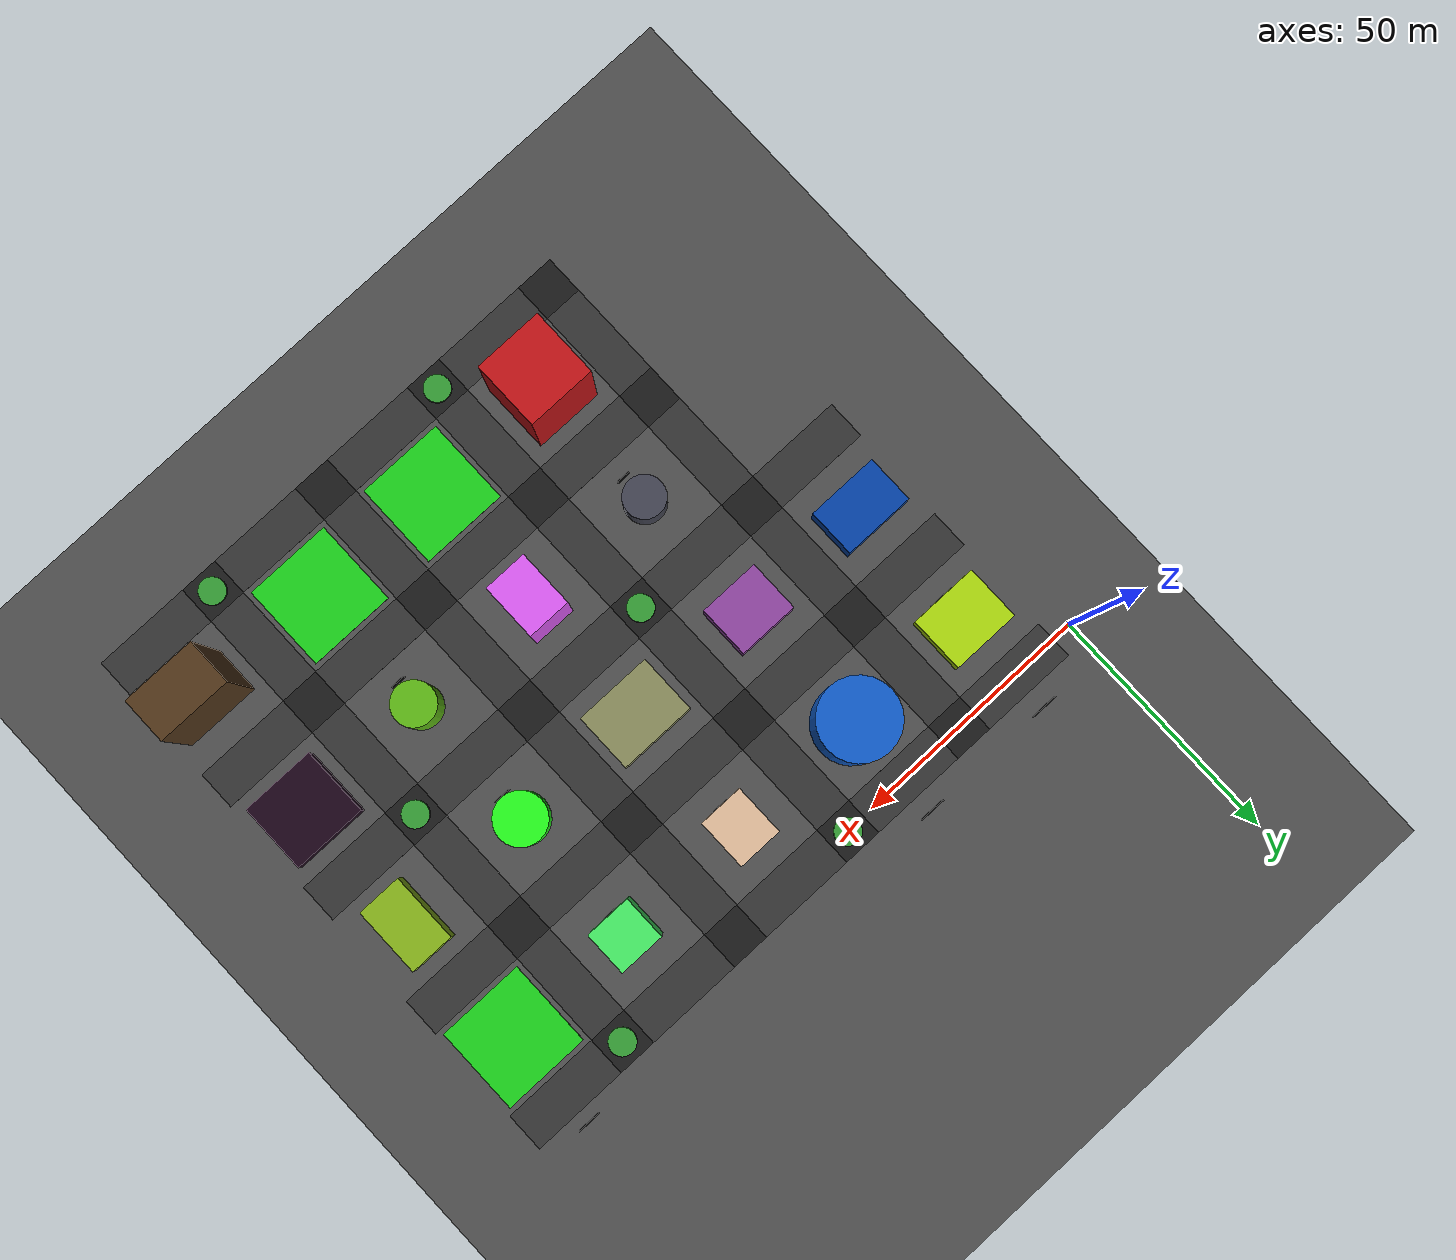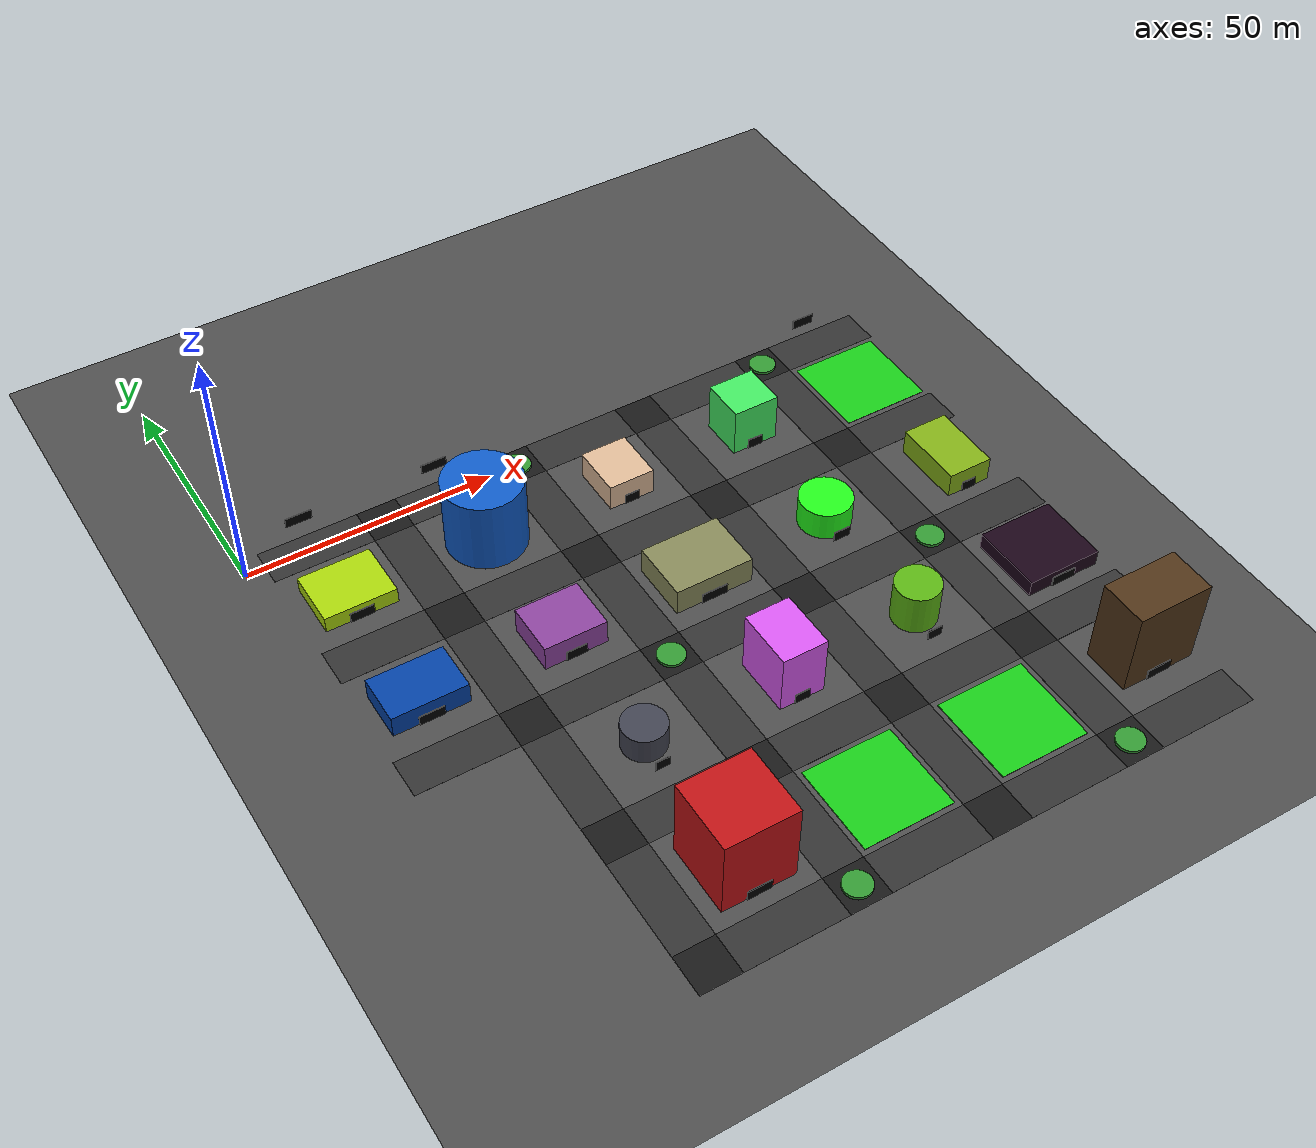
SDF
<sdf version="1.8">
 <world name="urban_city_rich">
  <model name="ground_plane">
   <static>true</static>
   <link name="link">
    <collision name="collision">
     <geometry><plane><normal>0 0 1</normal><size>200 200</size></plane></geometry>
     <surface><friction><ode><mu>100</mu><mu2>50</mu2></ode></friction></surface>
    </collision>
    <visual name="visual">
     <geometry><plane><normal>0 0 1</normal><size>200 200</size></plane></geometry>
     <material><ambient>0.3 0.3 0.3 1</ambient><diffuse>0.3 0.3 0.3 1</diffuse></material>
    </visual>
   </link>
  </model>
  <model name="road_h_0_-2">
   <static>true</static>
   <pose>14.0 -56.0 0.01 0 0 0</pose>
   <link name="link">
    <visual name="vis">
     <geometry><box><size>20.0 8.0 0.02</size></box></geometry>
     <material><ambient>0.2 0.2 0.2 1</ambient><diffuse>0.2 0.2 0.2 1</diffuse></material>
    </visual>
   </link>
  </model>
  <model name="bldg_26">
   <static>true</static>
   <pose>14.0 -42.0 2.227329479472929 0 0 0</pose>
   <link name="link">
    <collision name="col">
     <geometry><box><size>14.830618480299945 9.937693377669264 4.454658958945858</size></box></geometry>
    </collision>
    <visual name="vis">
     <geometry><box><size>14.830618480299945 9.937693377669264 4.454658958945858</size></box></geometry>
     <material>
      <ambient>0.014944022647955912 0.2557046216939589 0.6436075818787669 1</ambient>
      <diffuse>0.014944022647955912 0.2557046216939589 0.6436075818787669 1</diffuse>
     </material>
    </visual>
   </link>
  </model>
  <model name="door_26">
   <static>true</static>
   <pose>14.0 -47.06884668883463 1.0 0 0 0</pose>
   <link name="link">
    <visual name="vis">
     <geometry><box><size>4.943539493433315 0.2 2.0</size></box></geometry>
     <material><ambient>0 0 0 1</ambient><diffuse>0 0 0 1</diffuse></material>
    </visual>
   </link>
  </model>
  <model name="road_h_0_-1">
   <static>true</static>
   <pose>14.0 -28.0 0.01 0 0 0</pose>
   <link name="link">
    <visual name="vis">
     <geometry><box><size>20.0 8.0 0.02</size></box></geometry>
     <material><ambient>0.2 0.2 0.2 1</ambient><diffuse>0.2 0.2 0.2 1</diffuse></material>
    </visual>
   </link>
  </model>
  <model name="bldg_27">
   <static>true</static>
   <pose>14.0 -14.0 1.6210512188448476 0 0 0</pose>
   <link name="link">
    <collision name="col">
     <geometry><box><size>14.226174363999363 11.5067165014431 3.242102437689695</size></box></geometry>
    </collision>
    <visual name="vis">
     <geometry><box><size>14.226174363999363 11.5067165014431 3.242102437689695</size></box></geometry>
     <material>
      <ambient>0.6643178804394669 0.8339242576962013 0.04621864797523745 1</ambient>
      <diffuse>0.6643178804394669 0.8339242576962013 0.04621864797523745 1</diffuse>
     </material>
    </visual>
   </link>
  </model>
  <model name="door_27">
   <static>true</static>
   <pose>14.0 -19.853358250721552 1.0 0 0 0</pose>
   <link name="link">
    <visual name="vis">
     <geometry><box><size>4.7420581213331205 0.2 2.0</size></box></geometry>
     <material><ambient>0 0 0 1</ambient><diffuse>0 0 0 1</diffuse></material>
    </visual>
   </link>
  </model>
  <model name="road_h_0_0">
   <static>true</static>
   <pose>14.0 0.0 0.01 0 0 0</pose>
   <link name="link">
    <visual name="vis">
     <geometry><box><size>20.0 8.0 0.02</size></box></geometry>
     <material><ambient>0.2 0.2 0.2 1</ambient><diffuse>0.2 0.2 0.2 1</diffuse></material>
    </visual>
   </link>
  </model>
  <model name="door_28">
   <static>true</static>
   <pose>14.0 7.712627595097462 1.0 0 0 0</pose>
   <link name="link">
    <visual name="vis">
     <geometry><box><size>5.265578437252922 0.2 2.0</size></box></geometry>
     <material><ambient>0 0 0 1</ambient><diffuse>0 0 0 1</diffuse></material>
    </visual>
   </link>
  </model>
  <model name="road_inter_1_-4">
   <static>true</static>
   <pose>28.0 -112.0 0.01 0 0 0</pose>
   <link name="link">
    <visual name="vis">
     <geometry><box><size>8.0 8.0 0.02</size></box></geometry>
     <material><ambient>0.1 0.1 0.1 1</ambient><diffuse>0.1 0.1 0.1 1</diffuse></material>
    </visual>
   </link>
  </model>
  <model name="road_h_1_-4">
   <static>true</static>
   <pose>42.0 -112.0 0.01 0 0 0</pose>
   <link name="link">
    <visual name="vis">
     <geometry><box><size>20.0 8.0 0.02</size></box></geometry>
     <material><ambient>0.2 0.2 0.2 1</ambient><diffuse>0.2 0.2 0.2 1</diffuse></material>
    </visual>
   </link>
  </model>
  <model name="road_v_1_-4">
   <static>true</static>
   <pose>28.0 -98.0 0.01 0 0 0</pose>
   <link name="link">
    <visual name="vis">
     <geometry><box><size>8.0 20.0 0.02</size></box></geometry>
     <material><ambient>0.2 0.2 0.2 1</ambient><diffuse>0.2 0.2 0.2 1</diffuse></material>
    </visual>
   </link>
  </model>
  <model name="bldg_31">
   <static>true</static>
   <pose>42.0 -98.0 8.404288380516794 0 0 0</pose>
   <link name="link">
    <collision name="col">
     <geometry><box><size>14.20869889164246 14.167049217585973 16.80857676103359</size></box></geometry>
    </collision>
    <visual name="vis">
     <geometry><box><size>14.20869889164246 14.167049217585973 16.80857676103359</size></box></geometry>
     <material>
      <ambient>0.750558616804145 0.07492896890688527 0.0869654473486281 1</ambient>
      <diffuse>0.750558616804145 0.07492896890688527 0.0869654473486281 1</diffuse>
     </material>
    </visual>
   </link>
  </model>
  <model name="door_31">
   <static>true</static>
   <pose>42.0 -105.18352460879298 1.0 0 0 0</pose>
   <link name="link">
    <visual name="vis">
     <geometry><box><size>4.73623296388082 0.2 2.0</size></box></geometry>
     <material><ambient>0 0 0 1</ambient><diffuse>0 0 0 1</diffuse></material>
    </visual>
   </link>
  </model>
  <model name="road_inter_1_-3">
   <static>true</static>
   <pose>28.0 -84.0 0.01 0 0 0</pose>
   <link name="link">
    <visual name="vis">
     <geometry><box><size>8.0 8.0 0.02</size></box></geometry>
     <material><ambient>0.1 0.1 0.1 1</ambient><diffuse>0.1 0.1 0.1 1</diffuse></material>
    </visual>
   </link>
  </model>
  <model name="road_h_1_-3">
   <static>true</static>
   <pose>42.0 -84.0 0.01 0 0 0</pose>
   <link name="link">
    <visual name="vis">
     <geometry><box><size>20.0 8.0 0.02</size></box></geometry>
     <material><ambient>0.2 0.2 0.2 1</ambient><diffuse>0.2 0.2 0.2 1</diffuse></material>
    </visual>
   </link>
  </model>
  <model name="road_v_1_-3">
   <static>true</static>
   <pose>28.0 -70.0 0.01 0 0 0</pose>
   <link name="link">
    <visual name="vis">
     <geometry><box><size>8.0 20.0 0.02</size></box></geometry>
     <material><ambient>0.2 0.2 0.2 1</ambient><diffuse>0.2 0.2 0.2 1</diffuse></material>
    </visual>
   </link>
  </model>
  <model name="bldg_32">
   <static>true</static>
   <pose>42.0 -70.0 2.687505807491285 0 0 0</pose>
   <link name="link">
    <collision name="col">
     <geometry><cylinder><radius>4.201098558065695</radius><length>5.37501161498257</length></cylinder></geometry>
    </collision>
    <visual name="vis">
     <geometry><cylinder><radius>4.201098558065695</radius><length>5.37501161498257</length></cylinder></geometry>
     <material>
      <ambient>0.2552862374195416 0.2608873954348342 0.31461987145620296 1</ambient>
      <diffuse>0.2552862374195416 0.2608873954348342 0.31461987145620296 1</diffuse>
     </material>
    </visual>
   </link>
  </model>
  <model name="door_32">
   <static>true</static>
   <pose>42.0 -76.00262236780411 1.0 0 0 0</pose>
   <link name="link">
    <visual name="vis">
     <geometry><box><size>2.8007323720437967 0.2 2.0</size></box></geometry>
     <material><ambient>0 0 0 1</ambient><diffuse>0 0 0 1</diffuse></material>
    </visual>
   </link>
  </model>
  <model name="road_inter_1_-2">
   <static>true</static>
   <pose>28.0 -56.0 0.01 0 0 0</pose>
   <link name="link">
    <visual name="vis">
     <geometry><box><size>8.0 8.0 0.02</size></box></geometry>
     <material><ambient>0.1 0.1 0.1 1</ambient><diffuse>0.1 0.1 0.1 1</diffuse></material>
    </visual>
   </link>
  </model>
  <model name="road_h_1_-2">
   <static>true</static>
   <pose>42.0 -56.0 0.01 0 0 0</pose>
   <link name="link">
    <visual name="vis">
     <geometry><box><size>20.0 8.0 0.02</size></box></geometry>
     <material><ambient>0.2 0.2 0.2 1</ambient><diffuse>0.2 0.2 0.2 1</diffuse></material>
    </visual>
   </link>
  </model>
  <model name="road_v_1_-2">
   <static>true</static>
   <pose>28.0 -42.0 0.01 0 0 0</pose>
   <link name="link">
    <visual name="vis">
     <geometry><box><size>8.0 20.0 0.02</size></box></geometry>
     <material><ambient>0.2 0.2 0.2 1</ambient><diffuse>0.2 0.2 0.2 1</diffuse></material>
    </visual>
   </link>
  </model>
  <model name="bldg_33">
   <static>true</static>
   <pose>42.0 -42.0 2.5856748670217677 0 0 0</pose>
   <link name="link">
    <collision name="col">
     <geometry><box><size>12.516602339531532 10.679230928623316 5.1713497340435355</size></box></geometry>
    </collision>
    <visual name="vis">
     <geometry><box><size>12.516602339531532 10.679230928623316 5.1713497340435355</size></box></geometry>
     <material>
      <ambient>0.5465976833056978 0.2647346233425515 0.6176293978911161 1</ambient>
      <diffuse>0.5465976833056978 0.2647346233425515 0.6176293978911161 1</diffuse>
     </material>
    </visual>
   </link>
  </model>
  <model name="door_33">
   <static>true</static>
   <pose>42.0 -47.43961546431166 1.0 0 0 0</pose>
   <link name="link">
    <visual name="vis">
     <geometry><box><size>4.172200779843844 0.2 2.0</size></box></geometry>
     <material><ambient>0 0 0 1</ambient><diffuse>0 0 0 1</diffuse></material>
    </visual>
   </link>
  </model>
  <model name="road_inter_1_-1">
   <static>true</static>
   <pose>28.0 -28.0 0.01 0 0 0</pose>
   <link name="link">
    <visual name="vis">
     <geometry><box><size>8.0 8.0 0.02</size></box></geometry>
     <material><ambient>0.1 0.1 0.1 1</ambient><diffuse>0.1 0.1 0.1 1</diffuse></material>
    </visual>
   </link>
  </model>
  <model name="road_h_1_-1">
   <static>true</static>
   <pose>42.0 -28.0 0.01 0 0 0</pose>
   <link name="link">
    <visual name="vis">
     <geometry><box><size>20.0 8.0 0.02</size></box></geometry>
     <material><ambient>0.2 0.2 0.2 1</ambient><diffuse>0.2 0.2 0.2 1</diffuse></material>
    </visual>
   </link>
  </model>
  <model name="road_v_1_-1">
   <static>true</static>
   <pose>28.0 -14.0 0.01 0 0 0</pose>
   <link name="link">
    <visual name="vis">
     <geometry><box><size>8.0 20.0 0.02</size></box></geometry>
     <material><ambient>0.2 0.2 0.2 1</ambient><diffuse>0.2 0.2 0.2 1</diffuse></material>
    </visual>
   </link>
  </model>
  <model name="bldg_34">
   <static>true</static>
   <pose>42.0 -14.0 7.50124099914776 0 0 0</pose>
   <link name="link">
    <collision name="col">
     <geometry><cylinder><radius>7.812921677906109</radius><length>15.00248199829552</length></cylinder></geometry>
    </collision>
    <visual name="vis">
     <geometry><cylinder><radius>7.812921677906109</radius><length>15.00248199829552</length></cylinder></geometry>
     <material>
      <ambient>0.061045437425707116 0.3574875815688916 0.7789574554997412 1</ambient>
      <diffuse>0.061045437425707116 0.3574875815688916 0.7789574554997412 1</diffuse>
     </material>
    </visual>
   </link>
  </model>
  <model name="door_34">
   <static>true</static>
   <pose>42.0 -18.463495962005645 1.0 0 0 0</pose>
   <link name="link">
    <visual name="vis">
     <geometry><box><size>5.2086144519374065 0.2 2.0</size></box></geometry>
     <material><ambient>0 0 0 1</ambient><diffuse>0 0 0 1</diffuse></material>
    </visual>
   </link>
  </model>
  <model name="road_inter_1_0">
   <static>true</static>
   <pose>28.0 0.0 0.01 0 0 0</pose>
   <link name="link">
    <visual name="vis">
     <geometry><box><size>8.0 8.0 0.02</size></box></geometry>
     <material><ambient>0.1 0.1 0.1 1</ambient><diffuse>0.1 0.1 0.1 1</diffuse></material>
    </visual>
   </link>
  </model>
  <model name="road_h_1_0">
   <static>true</static>
   <pose>42.0 0.0 0.01 0 0 0</pose>
   <link name="link">
    <visual name="vis">
     <geometry><box><size>20.0 8.0 0.02</size></box></geometry>
     <material><ambient>0.2 0.2 0.2 1</ambient><diffuse>0.2 0.2 0.2 1</diffuse></material>
    </visual>
   </link>
  </model>
  <model name="door_35">
   <static>true</static>
   <pose>42.0 7.543833987541167 1.0 0 0 0</pose>
   <link name="link">
    <visual name="vis">
     <geometry><box><size>5.183334092854847 0.2 2.0</size></box></geometry>
     <material><ambient>0 0 0 1</ambient><diffuse>0 0 0 1</diffuse></material>
    </visual>
   </link>
  </model>
  <model name="road_inter_2_-4">
   <static>true</static>
   <pose>56.0 -112.0 0.01 0 0 0</pose>
   <link name="link">
    <visual name="vis">
     <geometry><box><size>8.0 8.0 0.02</size></box></geometry>
     <material><ambient>0.1 0.1 0.1 1</ambient><diffuse>0.1 0.1 0.1 1</diffuse></material>
    </visual>
   </link>
  </model>
  <model name="roundabout_2_-4">
   <static>true</static>
   <pose>56.0 -112.0 0.3 0 0 0</pose>
   <link name="link">
    <collision name="col">
     <geometry><cylinder><radius>2.6666666666666665</radius><length>0.6</length></cylinder></geometry>
    </collision>
    <visual name="vis">
     <geometry><cylinder><radius>2.6666666666666665</radius><length>0.6</length></cylinder></geometry>
     <material><ambient>0.2 0.6 0.2 1</ambient><diffuse>0.2 0.6 0.2 1</diffuse></material>
    </visual>
   </link>
  </model>
  <model name="road_h_2_-4">
   <static>true</static>
   <pose>70.0 -112.0 0.01 0 0 0</pose>
   <link name="link">
    <visual name="vis">
     <geometry><box><size>20.0 8.0 0.02</size></box></geometry>
     <material><ambient>0.2 0.2 0.2 1</ambient><diffuse>0.2 0.2 0.2 1</diffuse></material>
    </visual>
   </link>
  </model>
  <model name="road_v_2_-4">
   <static>true</static>
   <pose>56.0 -98.0 0.01 0 0 0</pose>
   <link name="link">
    <visual name="vis">
     <geometry><box><size>8.0 20.0 0.02</size></box></geometry>
     <material><ambient>0.2 0.2 0.2 1</ambient><diffuse>0.2 0.2 0.2 1</diffuse></material>
    </visual>
   </link>
  </model>
  <model name="park_2_-4">
   <static>true</static>
   <pose>70.0 -98.0 0.05 0 0 0</pose>
   <link name="link">
    <visual name="vis">
     <geometry><box><size>18.0 18.0 0.1</size></box></geometry>
     <material><ambient>0.1 0.8 0.1 1</ambient><diffuse>0.1 0.8 0.1 1</diffuse></material>
    </visual>
   </link>
  </model>
  <model name="road_inter_2_-3">
   <static>true</static>
   <pose>56.0 -84.0 0.01 0 0 0</pose>
   <link name="link">
    <visual name="vis">
     <geometry><box><size>8.0 8.0 0.02</size></box></geometry>
     <material><ambient>0.1 0.1 0.1 1</ambient><diffuse>0.1 0.1 0.1 1</diffuse></material>
    </visual>
   </link>
  </model>
  <model name="road_h_2_-3">
   <static>true</static>
   <pose>70.0 -84.0 0.01 0 0 0</pose>
   <link name="link">
    <visual name="vis">
     <geometry><box><size>20.0 8.0 0.02</size></box></geometry>
     <material><ambient>0.2 0.2 0.2 1</ambient><diffuse>0.2 0.2 0.2 1</diffuse></material>
    </visual>
   </link>
  </model>
  <model name="road_v_2_-3">
   <static>true</static>
   <pose>56.0 -70.0 0.01 0 0 0</pose>
   <link name="link">
    <visual name="vis">
     <geometry><box><size>8.0 20.0 0.02</size></box></geometry>
     <material><ambient>0.2 0.2 0.2 1</ambient><diffuse>0.2 0.2 0.2 1</diffuse></material>
    </visual>
   </link>
  </model>
  <model name="bldg_38">
   <static>true</static>
   <pose>70.0 -70.0 6.154425954870812 0 0 0</pose>
   <link name="link">
    <collision name="col">
     <geometry><box><size>9.009073683840544 11.739423851144277 12.308851909741623</size></box></geometry>
    </collision>
    <visual name="vis">
     <geometry><box><size>9.009073683840544 11.739423851144277 12.308851909741623</size></box></geometry>
     <material>
      <ambient>0.8473915560554008 0.34940695370986863 0.9401597498386961 1</ambient>
      <diffuse>0.8473915560554008 0.34940695370986863 0.9401597498386961 1</diffuse>
     </material>
    </visual>
   </link>
  </model>
  <model name="door_38">
   <static>true</static>
   <pose>70.0 -75.96971192557213 1.0 0 0 0</pose>
   <link name="link">
    <visual name="vis">
     <geometry><box><size>3.0030245612801814 0.2 2.0</size></box></geometry>
     <material><ambient>0 0 0 1</ambient><diffuse>0 0 0 1</diffuse></material>
    </visual>
   </link>
  </model>
  <model name="road_inter_2_-2">
   <static>true</static>
   <pose>56.0 -56.0 0.01 0 0 0</pose>
   <link name="link">
    <visual name="vis">
     <geometry><box><size>8.0 8.0 0.02</size></box></geometry>
     <material><ambient>0.1 0.1 0.1 1</ambient><diffuse>0.1 0.1 0.1 1</diffuse></material>
    </visual>
   </link>
  </model>
  <model name="roundabout_2_-2">
   <static>true</static>
   <pose>56.0 -56.0 0.3 0 0 0</pose>
   <link name="link">
    <collision name="col">
     <geometry><cylinder><radius>2.6666666666666665</radius><length>0.6</length></cylinder></geometry>
    </collision>
    <visual name="vis">
     <geometry><cylinder><radius>2.6666666666666665</radius><length>0.6</length></cylinder></geometry>
     <material><ambient>0.2 0.6 0.2 1</ambient><diffuse>0.2 0.6 0.2 1</diffuse></material>
    </visual>
   </link>
  </model>
  <model name="road_h_2_-2">
   <static>true</static>
   <pose>70.0 -56.0 0.01 0 0 0</pose>
   <link name="link">
    <visual name="vis">
     <geometry><box><size>20.0 8.0 0.02</size></box></geometry>
     <material><ambient>0.2 0.2 0.2 1</ambient><diffuse>0.2 0.2 0.2 1</diffuse></material>
    </visual>
   </link>
  </model>
  <model name="road_v_2_-2">
   <static>true</static>
   <pose>56.0 -42.0 0.01 0 0 0</pose>
   <link name="link">
    <visual name="vis">
     <geometry><box><size>8.0 20.0 0.02</size></box></geometry>
     <material><ambient>0.2 0.2 0.2 1</ambient><diffuse>0.2 0.2 0.2 1</diffuse></material>
    </visual>
   </link>
  </model>
  <model name="bldg_39">
   <static>true</static>
   <pose>70.0 -42.0 2.7153059546897342 0 0 0</pose>
   <link name="link">
    <collision name="col">
     <geometry><box><size>15.87618688394543 12.123913248613473 5.4306119093794685</size></box></geometry>
    </collision>
    <visual name="vis">
     <geometry><box><size>15.87618688394543 12.123913248613473 5.4306119093794685</size></box></geometry>
     <material>
      <ambient>0.5268780875361152 0.5370015854207405 0.3526800237430878 1</ambient>
      <diffuse>0.5268780875361152 0.5370015854207405 0.3526800237430878 1</diffuse>
     </material>
    </visual>
   </link>
  </model>
  <model name="door_39">
   <static>true</static>
   <pose>70.0 -48.16195662430674 1.0 0 0 0</pose>
   <link name="link">
    <visual name="vis">
     <geometry><box><size>5.292062294648477 0.2 2.0</size></box></geometry>
     <material><ambient>0 0 0 1</ambient><diffuse>0 0 0 1</diffuse></material>
    </visual>
   </link>
  </model>
  <model name="road_inter_2_-1">
   <static>true</static>
   <pose>56.0 -28.0 0.01 0 0 0</pose>
   <link name="link">
    <visual name="vis">
     <geometry><box><size>8.0 8.0 0.02</size></box></geometry>
     <material><ambient>0.1 0.1 0.1 1</ambient><diffuse>0.1 0.1 0.1 1</diffuse></material>
    </visual>
   </link>
  </model>
  <model name="road_h_2_-1">
   <static>true</static>
   <pose>70.0 -28.0 0.01 0 0 0</pose>
   <link name="link">
    <visual name="vis">
     <geometry><box><size>20.0 8.0 0.02</size></box></geometry>
     <material><ambient>0.2 0.2 0.2 1</ambient><diffuse>0.2 0.2 0.2 1</diffuse></material>
    </visual>
   </link>
  </model>
  <model name="road_v_2_-1">
   <static>true</static>
   <pose>56.0 -14.0 0.01 0 0 0</pose>
   <link name="link">
    <visual name="vis">
     <geometry><box><size>8.0 20.0 0.02</size></box></geometry>
     <material><ambient>0.2 0.2 0.2 1</ambient><diffuse>0.2 0.2 0.2 1</diffuse></material>
    </visual>
   </link>
  </model>
  <model name="bldg_40">
   <static>true</static>
   <pose>70.0 -14.0 2.693910421263247 0 0 0</pose>
   <link name="link">
    <collision name="col">
     <geometry><box><size>9.326530692349271 10.558313755330133 5.387820842526494</size></box></geometry>
    </collision>
    <visual name="vis">
     <geometry><box><size>9.326530692349271 10.558313755330133 5.387820842526494</size></box></geometry>
     <material>
      <ambient>0.8631135147435034 0.7215568437654141 0.5901288297784577 1</ambient>
      <diffuse>0.8631135147435034 0.7215568437654141 0.5901288297784577 1</diffuse>
     </material>
    </visual>
   </link>
  </model>
  <model name="door_40">
   <static>true</static>
   <pose>70.0 -19.379156877665068 1.0 0 0 0</pose>
   <link name="link">
    <visual name="vis">
     <geometry><box><size>3.1088435641164236 0.2 2.0</size></box></geometry>
     <material><ambient>0 0 0 1</ambient><diffuse>0 0 0 1</diffuse></material>
    </visual>
   </link>
  </model>
  <model name="road_inter_2_0">
   <static>true</static>
   <pose>56.0 0.0 0.01 0 0 0</pose>
   <link name="link">
    <visual name="vis">
     <geometry><box><size>8.0 8.0 0.02</size></box></geometry>
     <material><ambient>0.1 0.1 0.1 1</ambient><diffuse>0.1 0.1 0.1 1</diffuse></material>
    </visual>
   </link>
  </model>
  <model name="roundabout_2_0">
   <static>true</static>
   <pose>56.0 0.0 0.3 0 0 0</pose>
   <link name="link">
    <collision name="col">
     <geometry><cylinder><radius>2.6666666666666665</radius><length>0.6</length></cylinder></geometry>
    </collision>
    <visual name="vis">
     <geometry><cylinder><radius>2.6666666666666665</radius><length>0.6</length></cylinder></geometry>
     <material><ambient>0.2 0.6 0.2 1</ambient><diffuse>0.2 0.6 0.2 1</diffuse></material>
    </visual>
   </link>
  </model>
  <model name="road_h_2_0">
   <static>true</static>
   <pose>70.0 0.0 0.01 0 0 0</pose>
   <link name="link">
    <visual name="vis">
     <geometry><box><size>20.0 8.0 0.02</size></box></geometry>
     <material><ambient>0.2 0.2 0.2 1</ambient><diffuse>0.2 0.2 0.2 1</diffuse></material>
    </visual>
   </link>
  </model>
  <model name="road_inter_3_-4">
   <static>true</static>
   <pose>84.0 -112.0 0.01 0 0 0</pose>
   <link name="link">
    <visual name="vis">
     <geometry><box><size>8.0 8.0 0.02</size></box></geometry>
     <material><ambient>0.1 0.1 0.1 1</ambient><diffuse>0.1 0.1 0.1 1</diffuse></material>
    </visual>
   </link>
  </model>
  <model name="road_h_3_-4">
   <static>true</static>
   <pose>98.0 -112.0 0.01 0 0 0</pose>
   <link name="link">
    <visual name="vis">
     <geometry><box><size>20.0 8.0 0.02</size></box></geometry>
     <material><ambient>0.2 0.2 0.2 1</ambient><diffuse>0.2 0.2 0.2 1</diffuse></material>
    </visual>
   </link>
  </model>
  <model name="road_v_3_-4">
   <static>true</static>
   <pose>84.0 -98.0 0.01 0 0 0</pose>
   <link name="link">
    <visual name="vis">
     <geometry><box><size>8.0 20.0 0.02</size></box></geometry>
     <material><ambient>0.2 0.2 0.2 1</ambient><diffuse>0.2 0.2 0.2 1</diffuse></material>
    </visual>
   </link>
  </model>
  <model name="park_3_-4">
   <static>true</static>
   <pose>98.0 -98.0 0.05 0 0 0</pose>
   <link name="link">
    <visual name="vis">
     <geometry><box><size>18.0 18.0 0.1</size></box></geometry>
     <material><ambient>0.1 0.8 0.1 1</ambient><diffuse>0.1 0.8 0.1 1</diffuse></material>
    </visual>
   </link>
  </model>
  <model name="road_inter_3_-3">
   <static>true</static>
   <pose>84.0 -84.0 0.01 0 0 0</pose>
   <link name="link">
    <visual name="vis">
     <geometry><box><size>8.0 8.0 0.02</size></box></geometry>
     <material><ambient>0.1 0.1 0.1 1</ambient><diffuse>0.1 0.1 0.1 1</diffuse></material>
    </visual>
   </link>
  </model>
  <model name="road_h_3_-3">
   <static>true</static>
   <pose>98.0 -84.0 0.01 0 0 0</pose>
   <link name="link">
    <visual name="vis">
     <geometry><box><size>20.0 8.0 0.02</size></box></geometry>
     <material><ambient>0.2 0.2 0.2 1</ambient><diffuse>0.2 0.2 0.2 1</diffuse></material>
    </visual>
   </link>
  </model>
  <model name="road_v_3_-3">
   <static>true</static>
   <pose>84.0 -70.0 0.01 0 0 0</pose>
   <link name="link">
    <visual name="vis">
     <geometry><box><size>8.0 20.0 0.02</size></box></geometry>
     <material><ambient>0.2 0.2 0.2 1</ambient><diffuse>0.2 0.2 0.2 1</diffuse></material>
    </visual>
   </link>
  </model>
  <model name="bldg_46">
   <static>true</static>
   <pose>98.0 -70.0 4.153096538224782 0 0 0</pose>
   <link name="link">
    <collision name="col">
     <geometry>
      <cylinder><radius>4.3735702617982515</radius><length>8.306193076449564</length></cylinder>
     </geometry>
    </collision>
    <visual name="vis">
     <geometry>
      <cylinder><radius>4.3735702617982515</radius><length>8.306193076449564</length></cylinder>
     </geometry>
     <material>
      <ambient>0.3590225104113234 0.7038481829484335 0.07840755687511325 1</ambient>
      <diffuse>0.3590225104113234 0.7038481829484335 0.07840755687511325 1</diffuse>
     </material>
    </visual>
   </link>
  </model>
  <model name="door_46">
   <static>true</static>
   <pose>98.0 -76.05665197296246 1.0 0 0 0</pose>
   <link name="link">
    <visual name="vis">
     <geometry><box><size>2.915713507865501 0.2 2.0</size></box></geometry>
     <material><ambient>0 0 0 1</ambient><diffuse>0 0 0 1</diffuse></material>
    </visual>
   </link>
  </model>
  <model name="road_inter_3_-2">
   <static>true</static>
   <pose>84.0 -56.0 0.01 0 0 0</pose>
   <link name="link">
    <visual name="vis">
     <geometry><box><size>8.0 8.0 0.02</size></box></geometry>
     <material><ambient>0.1 0.1 0.1 1</ambient><diffuse>0.1 0.1 0.1 1</diffuse></material>
    </visual>
   </link>
  </model>
  <model name="road_h_3_-2">
   <static>true</static>
   <pose>98.0 -56.0 0.01 0 0 0</pose>
   <link name="link">
    <visual name="vis">
     <geometry><box><size>20.0 8.0 0.02</size></box></geometry>
     <material><ambient>0.2 0.2 0.2 1</ambient><diffuse>0.2 0.2 0.2 1</diffuse></material>
    </visual>
   </link>
  </model>
  <model name="road_v_3_-2">
   <static>true</static>
   <pose>84.0 -42.0 0.01 0 0 0</pose>
   <link name="link">
    <visual name="vis">
     <geometry><box><size>8.0 20.0 0.02</size></box></geometry>
     <material><ambient>0.2 0.2 0.2 1</ambient><diffuse>0.2 0.2 0.2 1</diffuse></material>
    </visual>
   </link>
  </model>
  <model name="bldg_47">
   <static>true</static>
   <pose>98.0 -42.0 2.904697196497991 0 0 0</pose>
   <link name="link">
    <collision name="col">
     <geometry><cylinder><radius>5.180633058644766</radius><length>5.809394392995982</length></cylinder></geometry>
    </collision>
    <visual name="vis">
     <geometry><cylinder><radius>5.180633058644766</radius><length>5.809394392995982</length></cylinder></geometry>
     <material>
      <ambient>0.13964670183557149 0.9764104807582136 0.10597364464249848 1</ambient>
      <diffuse>0.13964670183557149 0.9764104807582136 0.10597364464249848 1</diffuse>
     </material>
    </visual>
   </link>
  </model>
  <model name="door_47">
   <static>true</static>
   <pose>98.0 -47.6723090819589 1.0 0 0 0</pose>
   <link name="link">
    <visual name="vis">
     <geometry><box><size>3.453755372429844 0.2 2.0</size></box></geometry>
     <material><ambient>0 0 0 1</ambient><diffuse>0 0 0 1</diffuse></material>
    </visual>
   </link>
  </model>
  <model name="road_inter_3_-1">
   <static>true</static>
   <pose>84.0 -28.0 0.01 0 0 0</pose>
   <link name="link">
    <visual name="vis">
     <geometry><box><size>8.0 8.0 0.02</size></box></geometry>
     <material><ambient>0.1 0.1 0.1 1</ambient><diffuse>0.1 0.1 0.1 1</diffuse></material>
    </visual>
   </link>
  </model>
  <model name="road_h_3_-1">
   <static>true</static>
   <pose>98.0 -28.0 0.01 0 0 0</pose>
   <link name="link">
    <visual name="vis">
     <geometry><box><size>20.0 8.0 0.02</size></box></geometry>
     <material><ambient>0.2 0.2 0.2 1</ambient><diffuse>0.2 0.2 0.2 1</diffuse></material>
    </visual>
   </link>
  </model>
  <model name="road_v_3_-1">
   <static>true</static>
   <pose>84.0 -14.0 0.01 0 0 0</pose>
   <link name="link">
    <visual name="vis">
     <geometry><box><size>8.0 20.0 0.02</size></box></geometry>
     <material><ambient>0.2 0.2 0.2 1</ambient><diffuse>0.2 0.2 0.2 1</diffuse></material>
    </visual>
   </link>
  </model>
  <model name="bldg_48">
   <static>true</static>
   <pose>98.0 -14.0 5.00470258643619 0 0 0</pose>
   <link name="link">
    <collision name="col">
     <geometry><box><size>9.46797819578278 9.042620743693611 10.00940517287238</size></box></geometry>
    </collision>
    <visual name="vis">
     <geometry><box><size>9.46797819578278 9.042620743693611 10.00940517287238</size></box></geometry>
     <material>
      <ambient>0.26253841622009166 0.9084985098863371 0.3827666087351749 1</ambient>
      <diffuse>0.26253841622009166 0.9084985098863371 0.3827666087351749 1</diffuse>
     </material>
    </visual>
   </link>
  </model>
  <model name="door_48">
   <static>true</static>
   <pose>98.0 -18.621310371846807 1.0 0 0 0</pose>
   <link name="link">
    <visual name="vis">
     <geometry><box><size>3.1559927319275936 0.2 2.0</size></box></geometry>
     <material><ambient>0 0 0 1</ambient><diffuse>0 0 0 1</diffuse></material>
    </visual>
   </link>
  </model>
  <model name="road_inter_3_0">
   <static>true</static>
   <pose>84.0 0.0 0.01 0 0 0</pose>
   <link name="link">
    <visual name="vis">
     <geometry><box><size>8.0 8.0 0.02</size></box></geometry>
     <material><ambient>0.1 0.1 0.1 1</ambient><diffuse>0.1 0.1 0.1 1</diffuse></material>
    </visual>
   </link>
  </model>
  <model name="road_h_3_0">
   <static>true</static>
   <pose>98.0 0.0 0.01 0 0 0</pose>
   <link name="link">
    <visual name="vis">
     <geometry><box><size>20.0 8.0 0.02</size></box></geometry>
     <material><ambient>0.2 0.2 0.2 1</ambient><diffuse>0.2 0.2 0.2 1</diffuse></material>
    </visual>
   </link>
  </model>
  <model name="road_inter_4_-4">
   <static>true</static>
   <pose>112.0 -112.0 0.01 0 0 0</pose>
   <link name="link">
    <visual name="vis">
     <geometry><box><size>8.0 8.0 0.02</size></box></geometry>
     <material><ambient>0.1 0.1 0.1 1</ambient><diffuse>0.1 0.1 0.1 1</diffuse></material>
    </visual>
   </link>
  </model>
  <model name="roundabout_4_-4">
   <static>true</static>
   <pose>112.0 -112.0 0.3 0 0 0</pose>
   <link name="link">
    <collision name="col">
     <geometry><cylinder><radius>2.6666666666666665</radius><length>0.6</length></cylinder></geometry>
    </collision>
    <visual name="vis">
     <geometry><cylinder><radius>2.6666666666666665</radius><length>0.6</length></cylinder></geometry>
     <material><ambient>0.2 0.6 0.2 1</ambient><diffuse>0.2 0.6 0.2 1</diffuse></material>
    </visual>
   </link>
  </model>
  <model name="road_h_4_-4">
   <static>true</static>
   <pose>126.0 -112.0 0.01 0 0 0</pose>
   <link name="link">
    <visual name="vis">
     <geometry><box><size>20.0 8.0 0.02</size></box></geometry>
     <material><ambient>0.2 0.2 0.2 1</ambient><diffuse>0.2 0.2 0.2 1</diffuse></material>
    </visual>
   </link>
  </model>
  <model name="road_v_4_-4">
   <static>true</static>
   <pose>112.0 -98.0 0.01 0 0 0</pose>
   <link name="link">
    <visual name="vis">
     <geometry><box><size>8.0 20.0 0.02</size></box></geometry>
     <material><ambient>0.2 0.2 0.2 1</ambient><diffuse>0.2 0.2 0.2 1</diffuse></material>
    </visual>
   </link>
  </model>
  <model name="bldg_53">
   <static>true</static>
   <pose>126.0 -98.0 8.763392059063595 0 0 0</pose>
   <link name="link">
    <collision name="col">
     <geometry><box><size>15.264887990252117 9.5737088134164 17.52678411812719</size></box></geometry>
    </collision>
    <visual name="vis">
     <geometry><box><size>15.264887990252117 9.5737088134164 17.52678411812719</size></box></geometry>
     <material>
      <ambient>0.31294395350472315 0.20687178632723502 0.0983318054603306 1</ambient>
      <diffuse>0.31294395350472315 0.20687178632723502 0.0983318054603306 1</diffuse>
     </material>
    </visual>
   </link>
  </model>
  <model name="door_53">
   <static>true</static>
   <pose>126.0 -102.8868544067082 1.0 0 0 0</pose>
   <link name="link">
    <visual name="vis">
     <geometry><box><size>5.0882959967507055 0.2 2.0</size></box></geometry>
     <material><ambient>0 0 0 1</ambient><diffuse>0 0 0 1</diffuse></material>
    </visual>
   </link>
  </model>
  <model name="road_inter_4_-3">
   <static>true</static>
   <pose>112.0 -84.0 0.01 0 0 0</pose>
   <link name="link">
    <visual name="vis">
     <geometry><box><size>8.0 8.0 0.02</size></box></geometry>
     <material><ambient>0.1 0.1 0.1 1</ambient><diffuse>0.1 0.1 0.1 1</diffuse></material>
    </visual>
   </link>
  </model>
  <model name="road_h_4_-3">
   <static>true</static>
   <pose>126.0 -84.0 0.01 0 0 0</pose>
   <link name="link">
    <visual name="vis">
     <geometry><box><size>20.0 8.0 0.02</size></box></geometry>
     <material><ambient>0.2 0.2 0.2 1</ambient><diffuse>0.2 0.2 0.2 1</diffuse></material>
    </visual>
   </link>
  </model>
  <model name="road_v_4_-3">
   <static>true</static>
   <pose>112.0 -70.0 0.01 0 0 0</pose>
   <link name="link">
    <visual name="vis">
     <geometry><box><size>8.0 20.0 0.02</size></box></geometry>
     <material><ambient>0.2 0.2 0.2 1</ambient><diffuse>0.2 0.2 0.2 1</diffuse></material>
    </visual>
   </link>
  </model>
  <model name="bldg_54">
   <static>true</static>
   <pose>126.0 -70.0 1.6351948389954145 0 0 0</pose>
   <link name="link">
    <collision name="col">
     <geometry><box><size>15.294093018685516 14.253683830886382 3.270389677990829</size></box></geometry>
    </collision>
    <visual name="vis">
     <geometry><box><size>15.294093018685516 14.253683830886382 3.270389677990829</size></box></geometry>
     <material>
      <ambient>0.10138619046186936 0.01670725085277247 0.09251673087435897 1</ambient>
      <diffuse>0.10138619046186936 0.01670725085277247 0.09251673087435897 1</diffuse>
     </material>
    </visual>
   </link>
  </model>
  <model name="door_54">
   <static>true</static>
   <pose>126.0 -77.22684191544319 1.0 0 0 0</pose>
   <link name="link">
    <visual name="vis">
     <geometry><box><size>5.0980310062285055 0.2 2.0</size></box></geometry>
     <material><ambient>0 0 0 1</ambient><diffuse>0 0 0 1</diffuse></material>
    </visual>
   </link>
  </model>
  <model name="road_inter_4_-2">
   <static>true</static>
   <pose>112.0 -56.0 0.01 0 0 0</pose>
   <link name="link">
    <visual name="vis">
     <geometry><box><size>8.0 8.0 0.02</size></box></geometry>
     <material><ambient>0.1 0.1 0.1 1</ambient><diffuse>0.1 0.1 0.1 1</diffuse></material>
    </visual>
   </link>
  </model>
  <model name="roundabout_4_-2">
   <static>true</static>
   <pose>112.0 -56.0 0.3 0 0 0</pose>
   <link name="link">
    <collision name="col">
     <geometry><cylinder><radius>2.6666666666666665</radius><length>0.6</length></cylinder></geometry>
    </collision>
    <visual name="vis">
     <geometry><cylinder><radius>2.6666666666666665</radius><length>0.6</length></cylinder></geometry>
     <material><ambient>0.2 0.6 0.2 1</ambient><diffuse>0.2 0.6 0.2 1</diffuse></material>
    </visual>
   </link>
  </model>
  <model name="road_h_4_-2">
   <static>true</static>
   <pose>126.0 -56.0 0.01 0 0 0</pose>
   <link name="link">
    <visual name="vis">
     <geometry><box><size>20.0 8.0 0.02</size></box></geometry>
     <material><ambient>0.2 0.2 0.2 1</ambient><diffuse>0.2 0.2 0.2 1</diffuse></material>
    </visual>
   </link>
  </model>
  <model name="road_v_4_-2">
   <static>true</static>
   <pose>112.0 -42.0 0.01 0 0 0</pose>
   <link name="link">
    <visual name="vis">
     <geometry><box><size>8.0 20.0 0.02</size></box></geometry>
     <material><ambient>0.2 0.2 0.2 1</ambient><diffuse>0.2 0.2 0.2 1</diffuse></material>
    </visual>
   </link>
  </model>
  <model name="bldg_55">
   <static>true</static>
   <pose>126.0 -42.0 2.526576122839023 0 0 0</pose>
   <link name="link">
    <collision name="col">
     <geometry><box><size>9.189649716644176 14.290638195438166 5.053152245678046</size></box></geometry>
    </collision>
    <visual name="vis">
     <geometry><box><size>9.189649716644176 14.290638195438166 5.053152245678046</size></box></geometry>
     <material>
      <ambient>0.5144515623749106 0.6858444763094209 0.09532399879599818 1</ambient>
      <diffuse>0.5144515623749106 0.6858444763094209 0.09532399879599818 1</diffuse>
     </material>
    </visual>
   </link>
  </model>
  <model name="door_55">
   <static>true</static>
   <pose>126.0 -49.24531909771908 1.0 0 0 0</pose>
   <link name="link">
    <visual name="vis">
     <geometry><box><size>3.0632165722147255 0.2 2.0</size></box></geometry>
     <material><ambient>0 0 0 1</ambient><diffuse>0 0 0 1</diffuse></material>
    </visual>
   </link>
  </model>
  <model name="road_inter_4_-1">
   <static>true</static>
   <pose>112.0 -28.0 0.01 0 0 0</pose>
   <link name="link">
    <visual name="vis">
     <geometry><box><size>8.0 8.0 0.02</size></box></geometry>
     <material><ambient>0.1 0.1 0.1 1</ambient><diffuse>0.1 0.1 0.1 1</diffuse></material>
    </visual>
   </link>
  </model>
  <model name="road_h_4_-1">
   <static>true</static>
   <pose>126.0 -28.0 0.01 0 0 0</pose>
   <link name="link">
    <visual name="vis">
     <geometry><box><size>20.0 8.0 0.02</size></box></geometry>
     <material><ambient>0.2 0.2 0.2 1</ambient><diffuse>0.2 0.2 0.2 1</diffuse></material>
    </visual>
   </link>
  </model>
  <model name="road_v_4_-1">
   <static>true</static>
   <pose>112.0 -14.0 0.01 0 0 0</pose>
   <link name="link">
    <visual name="vis">
     <geometry><box><size>8.0 20.0 0.02</size></box></geometry>
     <material><ambient>0.2 0.2 0.2 1</ambient><diffuse>0.2 0.2 0.2 1</diffuse></material>
    </visual>
   </link>
  </model>
  <model name="park_4_-1">
   <static>true</static>
   <pose>126.0 -14.0 0.05 0 0 0</pose>
   <link name="link">
    <visual name="vis">
     <geometry><box><size>18.0 18.0 0.1</size></box></geometry>
     <material><ambient>0.1 0.8 0.1 1</ambient><diffuse>0.1 0.8 0.1 1</diffuse></material>
    </visual>
   </link>
  </model>
  <model name="road_inter_4_0">
   <static>true</static>
   <pose>112.0 0.0 0.01 0 0 0</pose>
   <link name="link">
    <visual name="vis">
     <geometry><box><size>8.0 8.0 0.02</size></box></geometry>
     <material><ambient>0.1 0.1 0.1 1</ambient><diffuse>0.1 0.1 0.1 1</diffuse></material>
    </visual>
   </link>
  </model>
  <model name="roundabout_4_0">
   <static>true</static>
   <pose>112.0 0.0 0.3 0 0 0</pose>
   <link name="link">
    <collision name="col">
     <geometry><cylinder><radius>2.6666666666666665</radius><length>0.6</length></cylinder></geometry>
    </collision>
    <visual name="vis">
     <geometry><cylinder><radius>2.6666666666666665</radius><length>0.6</length></cylinder></geometry>
     <material><ambient>0.2 0.6 0.2 1</ambient><diffuse>0.2 0.6 0.2 1</diffuse></material>
    </visual>
   </link>
  </model>
  <model name="road_h_4_0">
   <static>true</static>
   <pose>126.0 0.0 0.01 0 0 0</pose>
   <link name="link">
    <visual name="vis">
     <geometry><box><size>20.0 8.0 0.02</size></box></geometry>
     <material><ambient>0.2 0.2 0.2 1</ambient><diffuse>0.2 0.2 0.2 1</diffuse></material>
    </visual>
   </link>
  </model>
  <model name="door_56">
   <static>true</static>
   <pose>126.0 6.412902732915706 1.0 0 0 0</pose>
   <link name="link">
    <visual name="vis">
     <geometry><box><size>4.653232678842548 0.2 2.0</size></box></geometry>
     <material><ambient>0 0 0 1</ambient><diffuse>0 0 0 1</diffuse></material>
    </visual>
   </link>
  </model>
 </world>
</sdf>
